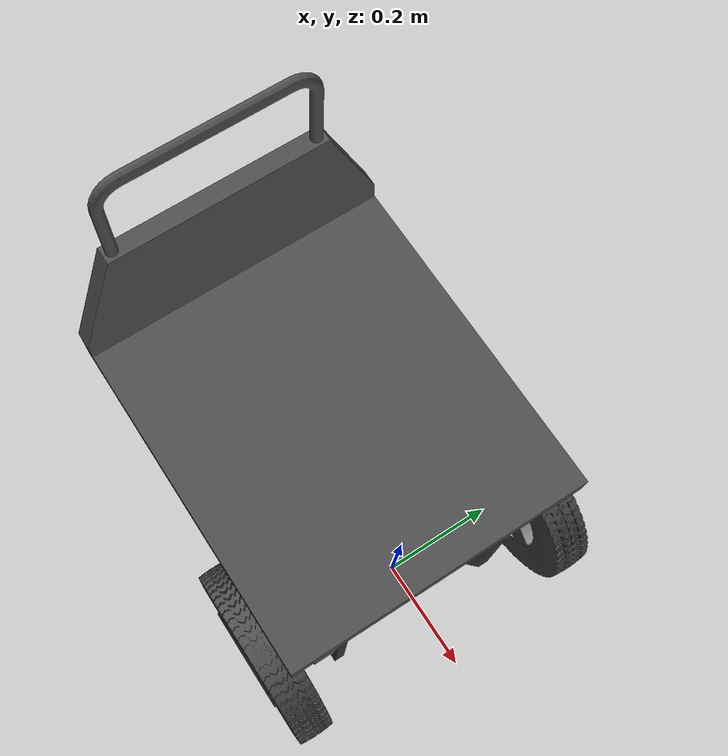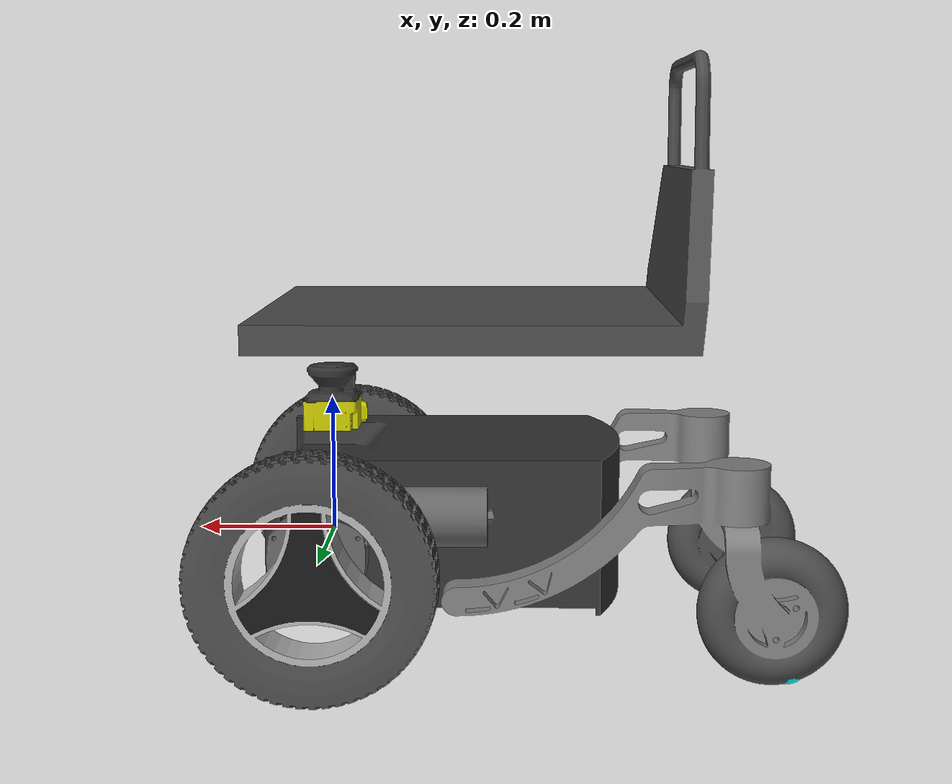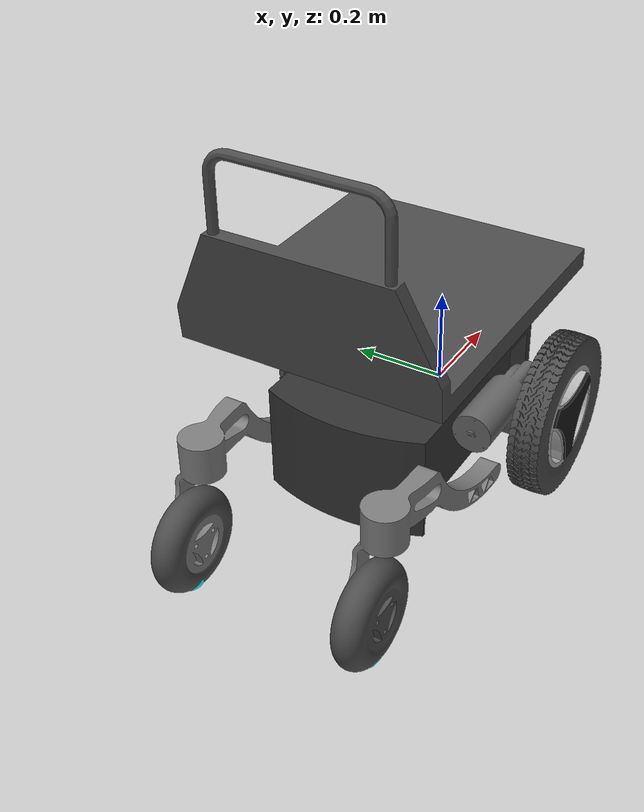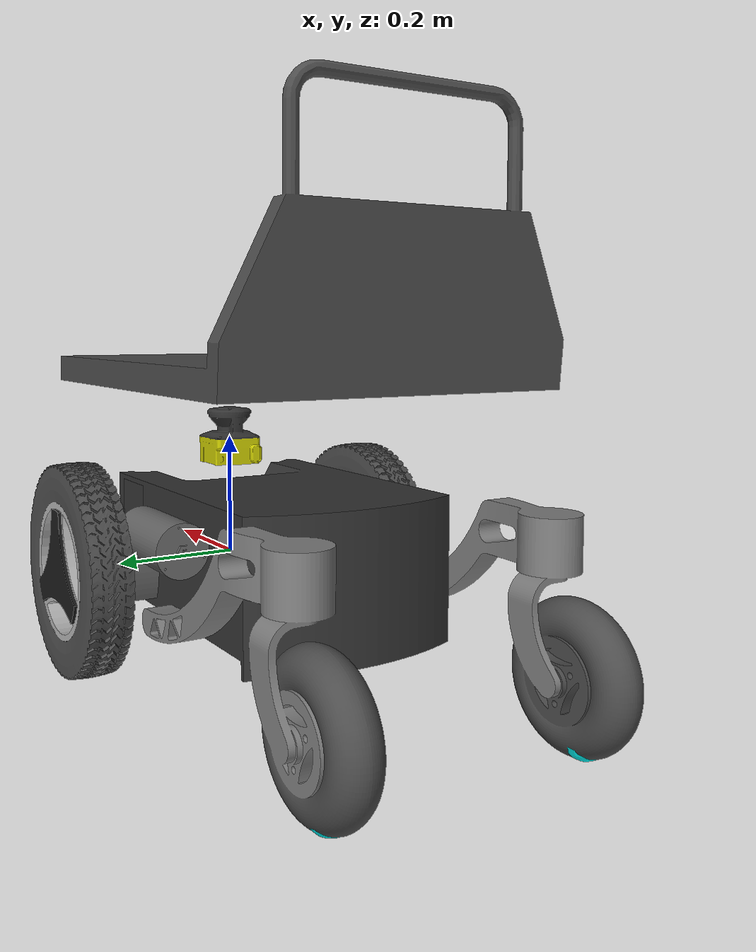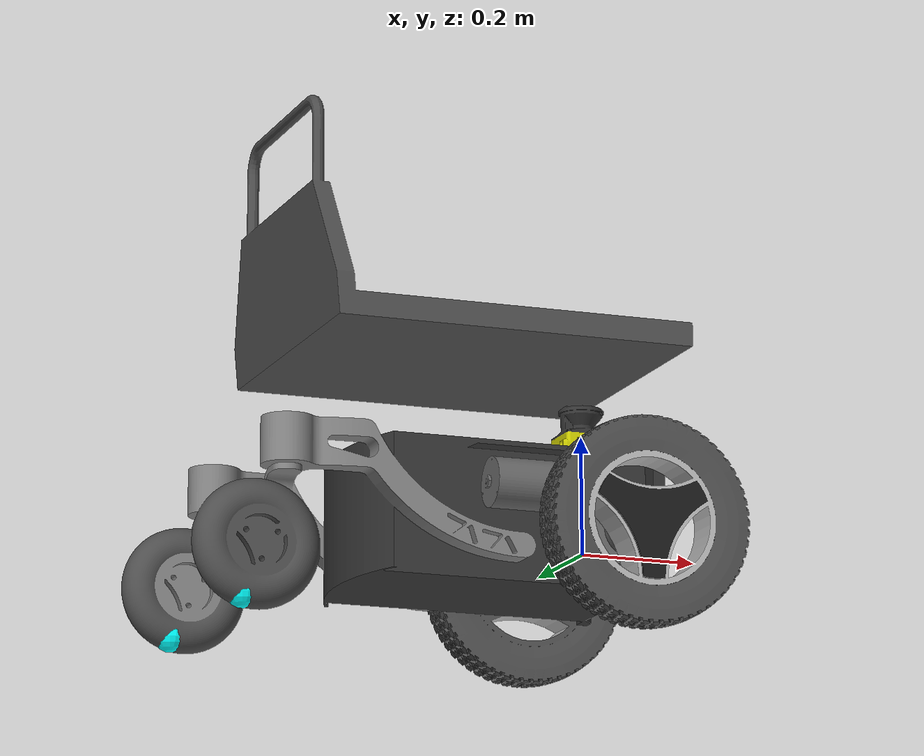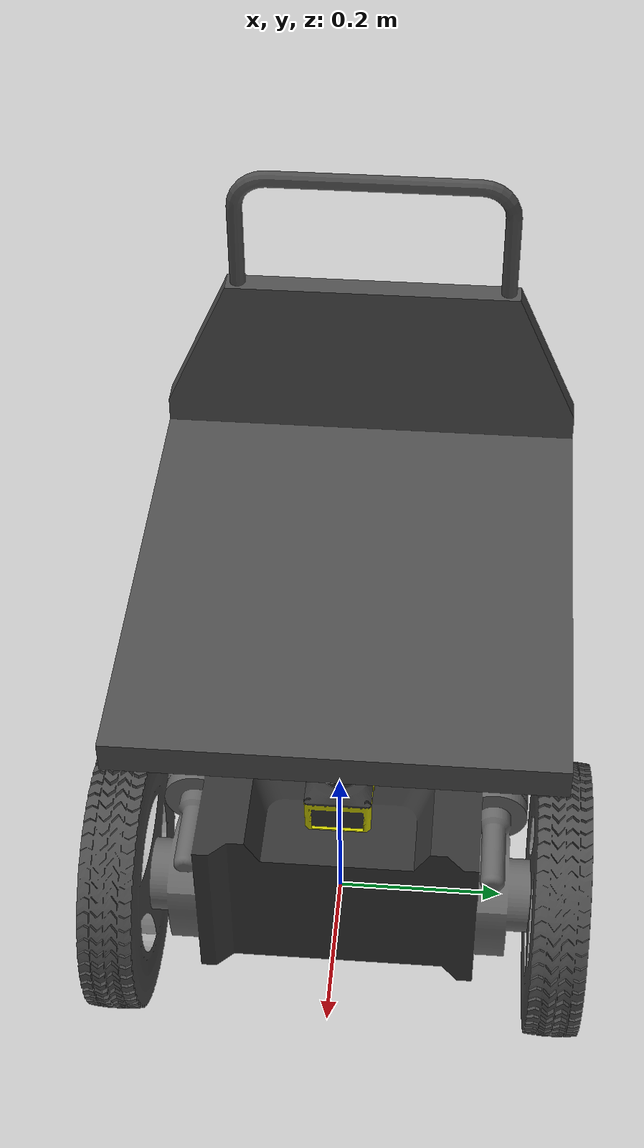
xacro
<?xml version="1.0"?>
<robot name="c300" xmlns:xacro="http://ros.org/wiki/xacro">

    <!-- Arguments -->
    <xacro:arg name="prefix" default="" />
    <xacro:arg name="sim_gazebo" default="false" />
    <xacro:arg name="sim_isaac" default="false" />
    <xacro:arg name="mock_hardware" default="false" />

    <!-- Import macros for hardware components -->
    <xacro:include filename="$(find c300_description)/urdf/c300_macro.xacro" />

    <xacro:load_c300
        prefix="$(arg prefix)"
        mock_hardware="$(arg mock_hardware)"
        sim_gazebo="$(arg sim_gazebo)"
        sim_isaac="$(arg sim_isaac)"/>

    <xacro:if value="$(arg sim_gazebo)">
        <xacro:include filename="$(find c300_description)/urdf/c300.gazebo.xacro" />
        <xacro:arg name="simulation_controllers" default="$(find c300_bringup)/config/c300_gz_controllers.yaml" />
        <xacro:c300_gazebo
            simulation_controllers="$(arg simulation_controllers)"/>
    </xacro:if>

</robot>

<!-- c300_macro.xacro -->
<robot name="c300" xmlns:xacro="http://ros.org/wiki/xacro">

  <xacro:macro name="load_c300" params="
    prefix
    sim_isaac:=false
    sim_gazebo:=false
    isaac_joint_commands:=/isaac_joint_commands
    isaac_joint_states:=/isaac_joint_states
    mock_hardware:=false">

    <!-- Import macros for main hardware components -->
    <xacro:include filename="$(find c300_description)/urdf/hokuyo_uam05lp.urdf.xacro" />

    <xacro:if value="${mock_hardware or sim_gazebo or sim_isaac}">
      <!-- ros2 control is only used for simulation -->
      <xacro:include filename="$(find c300_description)/urdf/c300.ros2_control.xacro" />
      <xacro:property name="ros2_control_name" value="c300_control"/>
      <xacro:c300_ros2_control
        name="${ros2_control_name}"
        mock_hardware="${mock_hardware}"
        sim_isaac="${sim_isaac}"
        isaac_joint_commands="${isaac_joint_commands}"
        isaac_joint_states="${isaac_joint_states}"
        sim_gazebo="${sim_gazebo}"/>
    </xacro:if>

    <!-- Define robot constants -->
    <xacro:property name="base_width" value="0.46"/>
    <xacro:property name="base_length" value="0.812"/>
    <xacro:property name="base_height" value="0.28"/>

    <xacro:property name="wheel_radius" value="0.1715"/>
    <xacro:property name="wheel_width" value="0.07"/>
    <xacro:property name="wheel_track" value="0.540"/>

    <xacro:property name="caster_xoff" value="0.65"/>

    <!-- Define some commonly used inertial properties  -->
    <xacro:macro name="box_inertia" params="m w h d">
      <inertial>
        <origin xyz="${-base_length/2 + 0.177} 0 0" rpy="${pi/2} 0 ${pi/2}"/>
        <mass value="${m}"/>
        <inertia ixx="${(m/12) * (h*h + d*d)}" ixy="0.0" ixz="0.0" iyy="${(m/12) * (w*w + d*d)}" iyz="0.0" izz="${(m/12) * (w*w + h*h)}"/>
      </inertial>
    </xacro:macro>
    <xacro:macro name="cylinder_inertia" params="m r h">
      <inertial>
        <origin xyz="0 0 0" rpy="${pi/2} 0 0" />
        <mass value="${m}"/>
        <inertia ixx="${(m/12) * (3*r*r + h*h)}" ixy = "0" ixz = "0" iyy="${(m/12) * (3*r*r + h*h)}" iyz = "0" izz="${(m/2) * (r*r)}"/>
      </inertial>
    </xacro:macro>
    <xacro:macro name="sphere_inertia" params="m r">
      <inertial>
        <mass value="${m}"/>
        <inertia ixx="${(2/5) * m * (r*r)}" ixy="0.0" ixz="0.0" iyy="${(2/5) * m * (r*r)}" iyz="0.0" izz="${(2/5) * m * (r*r)}"/>
      </inertial>
    </xacro:macro>

    <!-- Robot Base -->
    <link name="base_link">
      <visual>
        <origin xyz="0 0 0" rpy="0 0 0"/>
        <geometry>
            <mesh filename="file://$(find c300_description)/urdf/meshes/c300_base_link.dae"/>
        </geometry>
      </visual>

      <collision>
        <origin xyz="${-base_length/2 + 0.077} 0 0" rpy="0 0 0"/>
        <geometry>
          <box size="${base_length} ${base_width} ${base_height}"/>
        </geometry>
      </collision>

      <xacro:box_inertia m="15" w="${base_width}" d="${base_length}" h="${base_height}"/>
    </link>

    <!-- Robot Footprint -->
    <link name="base_footprint">
      <xacro:box_inertia m="0" w="0" d="0" h="0"/>
    </link>
    <joint name="base_joint" type="fixed">
      <parent link="base_link"/>
      <child link="base_footprint"/>
      <origin xyz="0.0 0.0 ${-wheel_radius}" rpy="0 0 0"/>
    </joint>

    <!-- Wheels -->
    <xacro:macro name="wheel" params="prefix x_reflect y_reflect">
      <link name="${prefix}_link">
        <visual>
          <origin xyz="0 0 0" rpy="${pi/2 + y_reflect * pi/2} 0 0"/>
          <geometry>
            <mesh filename="file://$(find c300_description)/urdf/meshes/wheel_link.dae"/>
        </geometry>
        </visual>

        <collision>
          <origin xyz="0 0 0" rpy="${pi/2} 0 0"/>
          <geometry>
            <cylinder radius="${wheel_radius}" length="${wheel_width}"/>
          </geometry>
        </collision>

        <xacro:cylinder_inertia m="0.5" r="${wheel_radius}" h="${wheel_width}"/>
      </link>

      <joint name="${prefix}_joint" type="continuous">
        <parent link="base_link"/>
        <child link="${prefix}_link"/>
        <origin xyz="0 ${y_reflect*wheel_track/2} 0" rpy="0 0 0"/>
        <axis xyz="0 1 0"/>
      </joint>
    </xacro:macro>

    <xacro:wheel prefix="drivewhl_l" x_reflect="1" y_reflect="1" />

    <xacro:wheel prefix="drivewhl_r" x_reflect="1" y_reflect="-1" />

    <link name="rr_caster">
      <visual>
        <geometry>
          <sphere radius="${(wheel_radius-(base_height/2))}"/>
        </geometry>
        <material name="Cyan">
          <color rgba="0 1.0 1.0 1.0"/>
        </material>
      </visual>

      <collision>
        <origin xyz="0 0 0" rpy="0 0 0"/>
        <geometry>
          <sphere radius="${(wheel_radius-(base_height/2))}"/>
        </geometry>
      </collision>

      <xacro:sphere_inertia m="0.5" r="${(wheel_radius-(base_height/2))}"/>
    </link>

    <joint name="rr_caster_joint" type="fixed">
      <parent link="base_link"/>
      <child link="rr_caster"/>
      <origin xyz="${-caster_xoff} 0.193 ${-(base_height/2)}" rpy="0 0 0"/>
    </joint>

    <link name="lr_caster">
      <visual>
        <geometry>
          <sphere radius="${(wheel_radius-(base_height/2))}"/>
        </geometry>
        <material name="Cyan">
          <color rgba="0 1.0 1.0 1.0"/>
        </material>
      </visual>

      <collision>
        <origin xyz="0 0 0" rpy="0 0 0"/>
        <geometry>
          <sphere radius="${(wheel_radius-(base_height/2))}"/>
        </geometry>
      </collision>

      <xacro:sphere_inertia m="0.5" r="${(wheel_radius-(base_height/2))}"/>
    </link>

    <joint name="lr_caster_joint" type="fixed">
      <parent link="base_link"/>
      <child link="lr_caster"/>
      <origin xyz="${-caster_xoff} -0.193 ${-(base_height/2)}" rpy="0 0 0"/>
    </joint>

    <!-- Robot's platform for arm mounting and holding containers/totes -->
    <link name="platform_link">
      <visual>
        <origin xyz="0 0 0" rpy="0 0 0"/>
        <geometry>
          <mesh filename="file://$(find c300_description)/urdf/meshes/platform.dae"/>
        </geometry>
      </visual>

      <collision>
        <origin xyz="0 0 0" rpy="0 0 0"/>
        <geometry>
          <mesh filename="file://$(find c300_description)/urdf/meshes/platform.dae"/>
        </geometry>
      </collision>

      <xacro:box_inertia m="15" w="${base_width}" d="${base_length - 0.2}" h="0.05"/>
    </link>

    <joint name="platform_joint" type="fixed">
      <parent link="base_link"/>
      <child link="platform_link"/>
      <origin xyz="-0.2 0 0.3" rpy="0 0 0"/>
    </joint>

    <xacro:hokuyo_uam05lp prefix="base" topic="scan" parent_link="base_link">
      <origin xyz="0 0 0.155" rpy="0 0 0" />
    </xacro:hokuyo_uam05lp>

    <link name="imu_link"/>
    <joint name="imu_joint" type="fixed">
      <parent link="base_link" />
      <child link="imu_link"/>
      <origin xyz="-0.1 0 0.155" rpy="0 0 0" />
    </joint>

  </xacro:macro>
</robot>

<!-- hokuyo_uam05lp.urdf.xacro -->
<robot xmlns:xacro="http://ros.org/wiki/xacro">
  <xacro:macro name="hokuyo_uam05lp" params="prefix topic parent_link min_angle:=-2.35619 max_angle:=2.35619 *origin">

    <xacro:include filename="$(find c300_description)/urdf/hokuyo.gazebo.xacro" />

    <xacro:hokuyo_gazebo
      frame="${prefix}_laser"
      topic="${topic}"
      min_angle="${min_angle}"
      max_angle="${max_angle}"/>

    <joint name="${prefix}_laser_mount_joint" type="fixed">
      <xacro:insert_block name="origin" />
      <parent link="${parent_link}" />
      <child link="${prefix}_laser_mount" />
    </joint>

    <link name="${prefix}_laser_mount">
      <inertial>
        <mass value="1.1" />
        <origin xyz="0 0 0" />
        <inertia ixx="${0.0833333 * 1.1 * (0.102*0.102 + 0.152*0.152)}" ixy="0.0" ixz="0.0"
          iyy="${0.0833333 * 1.1 * (0.105*0.105 + 0.152*0.152)}" iyz="0.0"
          izz="${0.0833333 * 1.1 * (0.105*0.105 + 0.102*0.102)}" />
      </inertial>
      <visual>
        <origin xyz="0 0 0" rpy="0 0 0" />
        <geometry>
          <!-- Origin of this mesh is the base of the bracket. -->
          <mesh filename="file://$(find c300_description)/urdf/meshes/UAM-05LP.dae" />
        </geometry>
      </visual>
      <collision>
        <origin xyz="0 0 ${0.095/2}" rpy="0 0 0"/>
        <geometry>
          <box size="0.08 0.08 0.095"/>
        </geometry>
      </collision>
    </link>

    <link name="${prefix}_laser"/>
    <joint name="${prefix}_laser_joint" type="fixed">
      <!-- This offset is from the base of the bracket to the LIDAR's focal point. -->
      <origin xyz="0 0 0.0674" rpy="0 0 0" />
      <parent link="${prefix}_laser_mount" />
      <child link="${prefix}_laser" />
    </joint>

  </xacro:macro>

</robot>
